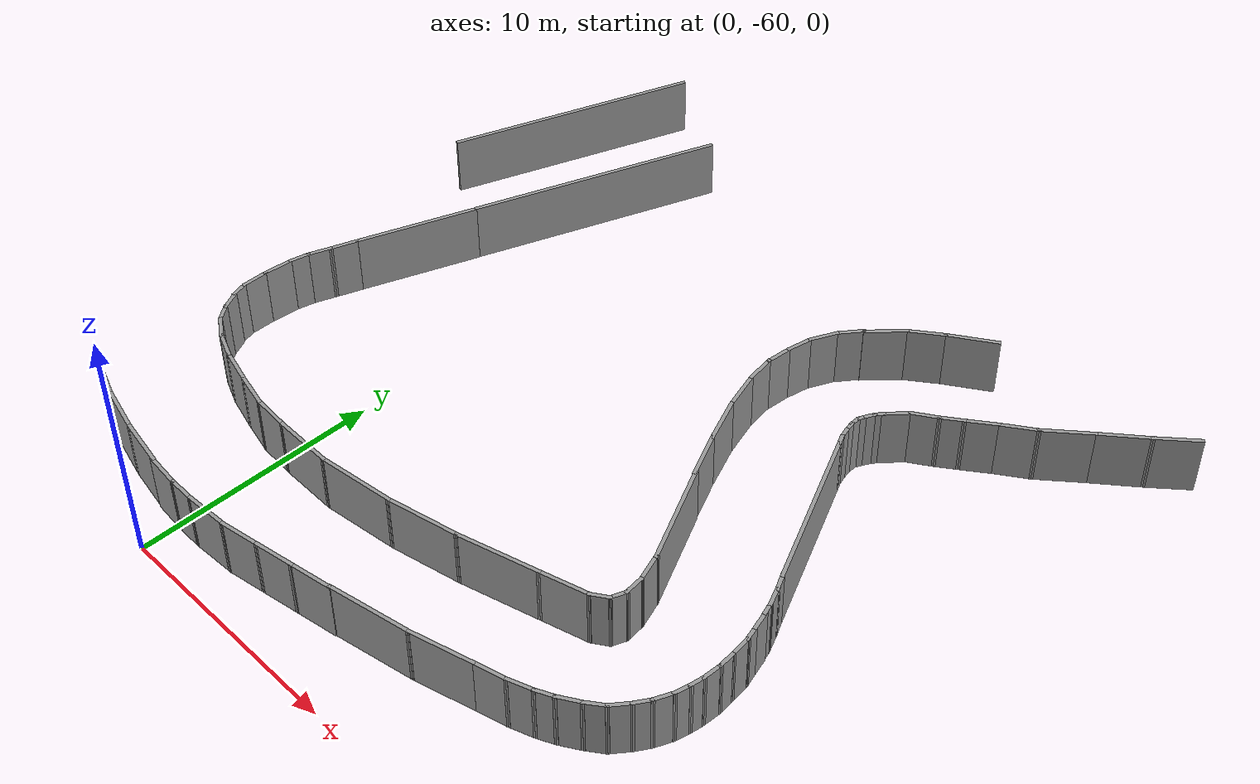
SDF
<sdf version="1.6">
 <model name="pista">
  <pose>-3.33646 -16.6519 0 0 -0 0</pose>
  <link name="Wall_100">
   <collision name="Wall_100_Collision">
    <geometry><box><size>0.780599 0.15 2.5</size></box></geometry>
    <pose>0 0 1.25 0 -0 0</pose>
   </collision>
   <visual name="Wall_100_Visual">
    <pose>0 0 1.25 0 -0 0</pose>
    <geometry><box><size>0.780599 0.15 2.5</size></box></geometry>
    <material>
     <script><uri>file://media/materials/scripts/gazebo.material</uri><name>Gazebo/Grey</name></script>
     <ambient>1 1 1 1</ambient>
    </material>
    <meta><layer>0</layer></meta>
   </visual>
   <pose>21.3853 -29.7001 0 0 0 -1.08828</pose>
  </link>
  <link name="Wall_101">
   <collision name="Wall_101_Collision">
    <geometry><box><size>0.852265 0.15 2.5</size></box></geometry>
    <pose>0 0 1.25 0 -0 0</pose>
   </collision>
   <visual name="Wall_101_Visual">
    <pose>0 0 1.25 0 -0 0</pose>
    <geometry><box><size>0.852265 0.15 2.5</size></box></geometry>
    <material>
     <script><uri>file://media/materials/scripts/gazebo.material</uri><name>Gazebo/Grey</name></script>
     <ambient>1 1 1 1</ambient>
    </material>
    <meta><layer>0</layer></meta>
   </visual>
   <pose>21.6779 -30.2986 0 0 0 -1.14103</pose>
  </link>
  <link name="Wall_102">
   <collision name="Wall_102_Collision">
    <geometry><box><size>0.570586 0.15 2.5</size></box></geometry>
    <pose>0 0 1.25 0 -0 0</pose>
   </collision>
   <visual name="Wall_102_Visual">
    <pose>0 0 1.25 0 -0 0</pose>
    <geometry><box><size>0.570586 0.15 2.5</size></box></geometry>
    <material>
     <script><uri>file://media/materials/scripts/gazebo.material</uri><name>Gazebo/Grey</name></script>
     <ambient>1 1 1 1</ambient>
    </material>
    <meta><layer>0</layer></meta>
   </visual>
   <pose>21.8907 -30.8173 0 0 0 -1.24905</pose>
  </link>
  <link name="Wall_104">
   <collision name="Wall_104_Collision">
    <geometry><box><size>0.815005 0.15 2.5</size></box></geometry>
    <pose>0 0 1.25 0 -0 0</pose>
   </collision>
   <visual name="Wall_104_Visual">
    <pose>0 0 1.25 0 -0 0</pose>
    <geometry><box><size>0.815005 0.15 2.5</size></box></geometry>
    <material>
     <script><uri>file://media/materials/scripts/gazebo.material</uri><name>Gazebo/Grey</name></script>
     <ambient>1 1 1 1</ambient>
    </material>
    <meta><layer>0</layer></meta>
   </visual>
   <pose>22.0769 -31.3626 0 0 0 -1.287</pose>
  </link>
  <link name="Wall_105">
   <collision name="Wall_105_Collision">
    <geometry><box><size>0.705428 0.15 2.5</size></box></geometry>
    <pose>0 0 1.25 0 -0 0</pose>
   </collision>
   <visual name="Wall_105_Visual">
    <pose>0 0 1.25 0 -0 0</pose>
    <geometry><box><size>0.705428 0.15 2.5</size></box></geometry>
    <material>
     <script><uri>file://media/materials/scripts/gazebo.material</uri><name>Gazebo/Grey</name></script>
     <ambient>1 1 1 1</ambient>
    </material>
    <meta><layer>0</layer></meta>
   </visual>
   <pose>22.2498 -31.9478 0 0 0 -1.27934</pose>
  </link>
  <link name="Wall_106">
   <collision name="Wall_106_Collision">
    <geometry><box><size>0.955068 0.15 2.5</size></box></geometry>
    <pose>0 0 1.25 0 -0 0</pose>
   </collision>
   <visual name="Wall_106_Visual">
    <pose>0 0 1.25 0 -0 0</pose>
    <geometry><box><size>0.955068 0.15 2.5</size></box></geometry>
    <material>
     <script><uri>file://media/materials/scripts/gazebo.material</uri><name>Gazebo/Grey</name></script>
     <ambient>1 1 1 1</ambient>
    </material>
    <meta><layer>0</layer></meta>
   </visual>
   <pose>22.3828 -32.6128 0 0 0 -1.43824</pose>
  </link>
  <link name="Wall_107">
   <collision name="Wall_107_Collision">
    <geometry><box><size>0.790618 0.15 2.5</size></box></geometry>
    <pose>0 0 1.25 0 -0 0</pose>
   </collision>
   <visual name="Wall_107_Visual">
    <pose>0 0 1.25 0 -0 0</pose>
    <geometry><box><size>0.790618 0.15 2.5</size></box></geometry>
    <material>
     <script><uri>file://media/materials/scripts/gazebo.material</uri><name>Gazebo/Grey</name></script>
     <ambient>1 1 1 1</ambient>
    </material>
    <meta><layer>0</layer></meta>
   </visual>
   <pose>22.4626 -33.331 0 0 0 -1.48765</pose>
  </link>
  <link name="Wall_108">
   <collision name="Wall_108_Collision">
    <geometry><box><size>0.868698 0.15 2.5</size></box></geometry>
    <pose>0 0 1.25 0 -0 0</pose>
   </collision>
   <visual name="Wall_108_Visual">
    <pose>0 0 1.25 0 -0 0</pose>
    <geometry><box><size>0.868698 0.15 2.5</size></box></geometry>
    <material>
     <script><uri>file://media/materials/scripts/gazebo.material</uri><name>Gazebo/Grey</name></script>
     <ambient>1 1 1 1</ambient>
    </material>
    <meta><layer>0</layer></meta>
   </visual>
   <pose>22.4759 -34.0093 0 0 0 -1.60782</pose>
  </link>
  <link name="Wall_109">
   <collision name="Wall_109_Collision">
    <geometry><box><size>0.687956 0.15 2.5</size></box></geometry>
    <pose>0 0 1.25 0 -0 0</pose>
   </collision>
   <visual name="Wall_109_Visual">
    <pose>0 0 1.25 0 -0 0</pose>
    <geometry><box><size>0.687956 0.15 2.5</size></box></geometry>
    <material>
     <script><uri>file://media/materials/scripts/gazebo.material</uri><name>Gazebo/Grey</name></script>
     <ambient>1 1 1 1</ambient>
    </material>
    <meta><layer>0</layer></meta>
   </visual>
   <pose>22.4227 -34.6344 0 0 0 -1.71969</pose>
  </link>
  <link name="Wall_110">
   <collision name="Wall_110_Collision">
    <geometry><box><size>0.750128 0.15 2.5</size></box></geometry>
    <pose>0 0 1.25 0 -0 0</pose>
   </collision>
   <visual name="Wall_110_Visual">
    <pose>0 0 1.25 0 -0 0</pose>
    <geometry><box><size>0.750128 0.15 2.5</size></box></geometry>
    <material>
     <script><uri>file://media/materials/scripts/gazebo.material</uri><name>Gazebo/Grey</name></script>
     <ambient>1 1 1 1</ambient>
    </material>
    <meta><layer>0</layer></meta>
   </visual>
   <pose>22.3163 -35.193 0 0 0 -1.79427</pose>
  </link>
  <link name="Wall_111">
   <collision name="Wall_111_Collision">
    <geometry><box><size>0.900955 0.15 2.5</size></box></geometry>
    <pose>0 0 1.25 0 -0 0</pose>
   </collision>
   <visual name="Wall_111_Visual">
    <pose>0 0 1.25 0 -0 0</pose>
    <geometry><box><size>0.900955 0.15 2.5</size></box></geometry>
    <material>
     <script><uri>file://media/materials/scripts/gazebo.material</uri><name>Gazebo/Grey</name></script>
     <ambient>1 1 1 1</ambient>
    </material>
    <meta><layer>0</layer></meta>
   </visual>
   <pose>22.1035 -35.8314 0 0 0 -1.97104</pose>
  </link>
  <link name="Wall_112">
   <collision name="Wall_112_Collision">
    <geometry><box><size>0.806976 0.15 2.5</size></box></geometry>
    <pose>0 0 1.25 0 -0 0</pose>
   </collision>
   <visual name="Wall_112_Visual">
    <pose>0 0 1.25 0 -0 0</pose>
    <geometry><box><size>0.806976 0.15 2.5</size></box></geometry>
    <material>
     <script><uri>file://media/materials/scripts/gazebo.material</uri><name>Gazebo/Grey</name></script>
     <ambient>1 1 1 1</ambient>
    </material>
    <meta><layer>0</layer></meta>
   </visual>
   <pose>21.7843 -36.4565 0 0 0 -2.1251</pose>
  </link>
  <link name="Wall_113">
   <collision name="Wall_113_Collision">
    <geometry><box><size>0.948006 0.15 2.5</size></box></geometry>
    <pose>0 0 1.25 0 -0 0</pose>
   </collision>
   <visual name="Wall_113_Visual">
    <pose>0 0 1.25 0 -0 0</pose>
    <geometry><box><size>0.948006 0.15 2.5</size></box></geometry>
    <material>
     <script><uri>file://media/materials/scripts/gazebo.material</uri><name>Gazebo/Grey</name></script>
     <ambient>1 1 1 1</ambient>
    </material>
    <meta><layer>0</layer></meta>
   </visual>
   <pose>21.372 -37.055 0 0 0 -2.2143</pose>
  </link>
  <link name="Wall_114">
   <collision name="Wall_114_Collision">
    <geometry><box><size>0.948006 0.15 2.5</size></box></geometry>
    <pose>0 0 1.25 0 -0 0</pose>
   </collision>
   <visual name="Wall_114_Visual">
    <pose>0 0 1.25 0 -0 0</pose>
    <geometry><box><size>0.948006 0.15 2.5</size></box></geometry>
    <material>
     <script><uri>file://media/materials/scripts/gazebo.material</uri><name>Gazebo/Grey</name></script>
     <ambient>1 1 1 1</ambient>
    </material>
    <meta><layer>0</layer></meta>
   </visual>
   <pose>20.8134 -37.6136 0 0 0 -2.49809</pose>
  </link>
  <link name="Wall_115">
   <collision name="Wall_115_Collision">
    <geometry><box><size>1.05792 0.15 2.5</size></box></geometry>
    <pose>0 0 1.25 0 -0 0</pose>
   </collision>
   <visual name="Wall_115_Visual">
    <pose>0 0 1.25 0 -0 0</pose>
    <geometry><box><size>1.05792 0.15 2.5</size></box></geometry>
    <material>
     <script><uri>file://media/materials/scripts/gazebo.material</uri><name>Gazebo/Grey</name></script>
     <ambient>1 1 1 1</ambient>
    </material>
    <meta><layer>0</layer></meta>
   </visual>
   <pose>20.1085 -38.0924 0 0 0 -2.5861</pose>
  </link>
  <link name="Wall_116">
   <collision name="Wall_116_Collision">
    <geometry><box><size>0.887646 0.15 2.5</size></box></geometry>
    <pose>0 0 1.25 0 -0 0</pose>
   </collision>
   <visual name="Wall_116_Visual">
    <pose>0 0 1.25 0 -0 0</pose>
    <geometry><box><size>0.887646 0.15 2.5</size></box></geometry>
    <material>
     <script><uri>file://media/materials/scripts/gazebo.material</uri><name>Gazebo/Grey</name></script>
     <ambient>1 1 1 1</ambient>
    </material>
    <meta><layer>0</layer></meta>
   </visual>
   <pose>19.3903 -38.4914 0 0 0 -2.69407</pose>
  </link>
  <link name="Wall_117">
   <collision name="Wall_117_Collision">
    <geometry><box><size>1.14315 0.15 2.5</size></box></geometry>
    <pose>0 0 1.25 0 -0 0</pose>
   </collision>
   <visual name="Wall_117_Visual">
    <pose>0 0 1.25 0 -0 0</pose>
    <geometry><box><size>1.14315 0.15 2.5</size></box></geometry>
    <material>
     <script><uri>file://media/materials/scripts/gazebo.material</uri><name>Gazebo/Grey</name></script>
     <ambient>1 1 1 1</ambient>
    </material>
    <meta><layer>0</layer></meta>
   </visual>
   <pose>18.5923 -38.8239 0 0 0 -2.78596</pose>
  </link>
  <link name="Wall_118">
   <collision name="Wall_118_Collision">
    <geometry><box><size>1.44715 0.15 2.5</size></box></geometry>
    <pose>0 0 1.25 0 -0 0</pose>
   </collision>
   <visual name="Wall_118_Visual">
    <pose>0 0 1.25 0 -0 0</pose>
    <geometry><box><size>1.44715 0.15 2.5</size></box></geometry>
    <material>
     <script><uri>file://media/materials/scripts/gazebo.material</uri><name>Gazebo/Grey</name></script>
     <ambient>1 1 1 1</ambient>
    </material>
    <meta><layer>0</layer></meta>
   </visual>
   <pose>17.5017 -39.1697 0 0 0 -2.87174</pose>
  </link>
  <link name="Wall_119">
   <collision name="Wall_119_Collision">
    <geometry><box><size>2.69307 0.15 2.5</size></box></geometry>
    <pose>0 0 1.25 0 -0 0</pose>
   </collision>
   <visual name="Wall_119_Visual">
    <pose>0 0 1.25 0 -0 0</pose>
    <geometry><box><size>2.69307 0.15 2.5</size></box></geometry>
    <material>
     <script><uri>file://media/materials/scripts/gazebo.material</uri><name>Gazebo/Grey</name></script>
     <ambient>1 1 1 1</ambient>
    </material>
    <meta><layer>0</layer></meta>
   </visual>
   <pose>15.653 -39.6885 0 0 0 -2.86617</pose>
  </link>
  <link name="Wall_120">
   <collision name="Wall_120_Collision">
    <geometry><box><size>3.52015 0.15 2.5</size></box></geometry>
    <pose>0 0 1.25 0 -0 0</pose>
   </collision>
   <visual name="Wall_120_Visual">
    <pose>0 0 1.25 0 -0 0</pose>
    <geometry><box><size>3.52015 0.15 2.5</size></box></geometry>
    <material>
     <script><uri>file://media/materials/scripts/gazebo.material</uri><name>Gazebo/Grey</name></script>
     <ambient>1 1 1 1</ambient>
    </material>
    <meta><layer>0</layer></meta>
   </visual>
   <pose>12.7802 -40.3801 0 0 0 -2.93491</pose>
  </link>
  <link name="Wall_131">
   <collision name="Wall_131_Collision">
    <geometry><box><size>1.58863 0.15 2.5</size></box></geometry>
    <pose>0 0 1.25 0 -0 0</pose>
   </collision>
   <visual name="Wall_131_Visual">
    <pose>0 0 1.25 0 -0 0</pose>
    <geometry><box><size>1.58863 0.15 2.5</size></box></geometry>
    <material>
     <script><uri>file://media/materials/scripts/gazebo.material</uri><name>Gazebo/Grey</name></script>
     <ambient>1 1 1 1</ambient>
    </material>
    <meta><layer>0</layer></meta>
   </visual>
   <pose>-2.31544 -40.6195 0 0 0 -0.339293</pose>
  </link>
  <link name="Wall_132">
   <collision name="Wall_132_Collision">
    <geometry><box><size>2.06614 0.15 2.5</size></box></geometry>
    <pose>0 0 1.25 0 -0 0</pose>
   </collision>
   <visual name="Wall_132_Visual">
    <pose>0 0 1.25 0 -0 0</pose>
    <geometry><box><size>2.06614 0.15 2.5</size></box></geometry>
    <material>
     <script><uri>file://media/materials/scripts/gazebo.material</uri><name>Gazebo/Grey</name></script>
     <ambient>1 1 1 1</ambient>
    </material>
    <meta><layer>0</layer></meta>
   </visual>
   <pose>-0.706128 -41.085 0 0 0 -0.238245</pose>
  </link>
  <link name="Wall_133">
   <collision name="Wall_133_Collision">
    <geometry><box><size>2.11788 0.15 2.5</size></box></geometry>
    <pose>0 0 1.25 0 -0 0</pose>
   </collision>
   <visual name="Wall_133_Visual">
    <pose>0 0 1.25 0 -0 0</pose>
    <geometry><box><size>2.11788 0.15 2.5</size></box></geometry>
    <material>
     <script><uri>file://media/materials/scripts/gazebo.material</uri><name>Gazebo/Grey</name></script>
     <ambient>1 1 1 1</ambient>
    </material>
    <meta><layer>0</layer></meta>
   </visual>
   <pose>1.19579 -41.4707 0 0 0 -0.162926</pose>
  </link>
  <link name="Wall_142">
   <collision name="Wall_142_Collision">
    <geometry><box><size>1.85594 0.15 2.5</size></box></geometry>
    <pose>0 0 1.25 0 -0 0</pose>
   </collision>
   <visual name="Wall_142_Visual">
    <pose>0 0 1.25 0 -0 0</pose>
    <geometry><box><size>1.85594 0.15 2.5</size></box></geometry>
    <material>
     <script><uri>file://media/materials/scripts/gazebo.material</uri><name>Gazebo/Grey</name></script>
     <ambient>1 1 1 1</ambient>
    </material>
    <meta><layer>0</layer></meta>
   </visual>
   <pose>10.2931 -40.9121 0 0 0 -2.95337</pose>
  </link>
  <link name="Wall_143">
   <collision name="Wall_143_Collision">
    <geometry><box><size>1.72031 0.15 2.5</size></box></geometry>
    <pose>0 0 1.25 0 -0 0</pose>
   </collision>
   <visual name="Wall_143_Visual">
    <pose>0 0 1.25 0 -0 0</pose>
    <geometry><box><size>1.72031 0.15 2.5</size></box></geometry>
    <material>
     <script><uri>file://media/materials/scripts/gazebo.material</uri><name>Gazebo/Grey</name></script>
     <ambient>1 1 1 1</ambient>
    </material>
    <meta><layer>0</layer></meta>
   </visual>
   <pose>8.68374 -41.218 0 0 0 -2.95416</pose>
  </link>
  <link name="Wall_144">
   <collision name="Wall_144_Collision">
    <geometry><box><size>1.74646 0.15 2.5</size></box></geometry>
    <pose>0 0 1.25 0 -0 0</pose>
   </collision>
   <visual name="Wall_144_Visual">
    <pose>0 0 1.25 0 -0 0</pose>
    <geometry><box><size>1.74646 0.15 2.5</size></box></geometry>
    <material>
     <script><uri>file://media/materials/scripts/gazebo.material</uri><name>Gazebo/Grey</name></script>
     <ambient>1 1 1 1</ambient>
    </material>
    <meta><layer>0</layer></meta>
   </visual>
   <pose>7.12763 -41.5106 0 0 0 -2.95727</pose>
  </link>
  <link name="Wall_145">
   <collision name="Wall_145_Collision">
    <geometry><box><size>1.90883 0.15 2.5</size></box></geometry>
    <pose>0 0 1.25 0 -0 0</pose>
   </collision>
   <visual name="Wall_145_Visual">
    <pose>0 0 1.25 0 -0 0</pose>
    <geometry><box><size>1.90883 0.15 2.5</size></box></geometry>
    <material>
     <script><uri>file://media/materials/scripts/gazebo.material</uri><name>Gazebo/Grey</name></script>
     <ambient>1 1 1 1</ambient>
    </material>
    <meta><layer>0</layer></meta>
   </visual>
   <pose>5.46512 -41.7101 0 0 0 -3.08106</pose>
  </link>
  <link name="Wall_146">
   <collision name="Wall_146_Collision">
    <geometry><box><size>1.18741 0.15 2.5</size></box></geometry>
    <pose>0 0 1.25 0 -0 0</pose>
   </collision>
   <visual name="Wall_146_Visual">
    <pose>0 0 1.25 0 -0 0</pose>
    <geometry><box><size>1.18741 0.15 2.5</size></box></geometry>
    <material>
     <script><uri>file://media/materials/scripts/gazebo.material</uri><name>Gazebo/Grey</name></script>
     <ambient>1 1 1 1</ambient>
    </material>
    <meta><layer>0</layer></meta>
   </visual>
   <pose>4.06861 -41.7633 0 0 -0 3.14159</pose>
  </link>
  <link name="Wall_147">
   <collision name="Wall_147_Collision">
    <geometry><box><size>1.5373 0.15 2.5</size></box></geometry>
    <pose>0 0 1.25 0 -0 0</pose>
   </collision>
   <visual name="Wall_147_Visual">
    <pose>0 0 1.25 0 -0 0</pose>
    <geometry><box><size>1.5373 0.15 2.5</size></box></geometry>
    <material>
     <script><uri>file://media/materials/scripts/gazebo.material</uri><name>Gazebo/Grey</name></script>
     <ambient>1 1 1 1</ambient>
    </material>
    <meta><layer>0</layer></meta>
   </visual>
   <pose>2.8583 -41.7101 0 0 -0 3.06482</pose>
  </link>
  <link name="Wall_156">
   <collision name="Wall_156_Collision">
    <geometry><box><size>10.3154 0.15 2.5</size></box></geometry>
    <pose>0 0 1.25 0 -0 0</pose>
   </collision>
   <visual name="Wall_156_Visual">
    <pose>0 0 1.25 0 -0 0</pose>
    <geometry><box><size>10.3154 0.15 2.5</size></box></geometry>
    <material>
     <script><uri>file://media/materials/scripts/gazebo.material</uri><name>Gazebo/Grey</name></script>
     <ambient>1 1 1 1</ambient>
    </material>
    <meta><layer>0</layer></meta>
   </visual>
   <pose>-2.39524 -17.4108 0 0 -0 1.22091</pose>
  </link>
  <link name="Wall_305">
   <collision name="Wall_305_Collision">
    <geometry><box><size>10.3929 0.15 2.5</size></box></geometry>
    <pose>0 0 1.25 0 -0 0</pose>
   </collision>
   <visual name="Wall_305_Visual">
    <pose>0 0 1.25 0 -0 0</pose>
    <geometry><box><size>10.3929 0.15 2.5</size></box></geometry>
    <material>
     <script><uri>file://media/materials/scripts/gazebo.material</uri><name>Gazebo/Grey</name></script>
     <ambient>1 1 1 1</ambient>
    </material>
    <meta><layer>0</layer></meta>
   </visual>
   <pose>1.39028 -19.6066 0 0 0 -1.92622</pose>
  </link>
  <link name="Wall_307">
   <collision name="Wall_307_Collision">
    <geometry><box><size>5.0317 0.15 2.5</size></box></geometry>
    <pose>0 0 1.25 0 -0 0</pose>
   </collision>
   <visual name="Wall_307_Visual">
    <pose>0 0 1.25 0 -0 0</pose>
    <geometry><box><size>5.0317 0.15 2.5</size></box></geometry>
    <material>
     <script><uri>file://media/materials/scripts/gazebo.material</uri><name>Gazebo/Grey</name></script>
     <ambient>1 1 1 1</ambient>
    </material>
    <meta><layer>0</layer></meta>
   </visual>
   <pose>-1.26598 -26.7931 0 0 0 -1.92702</pose>
  </link>
  <link name="Wall_308">
   <collision name="Wall_308_Collision">
    <geometry><box><size>1.25222 0.15 2.5</size></box></geometry>
    <pose>0 0 1.25 0 -0 0</pose>
   </collision>
   <visual name="Wall_308_Visual">
    <pose>0 0 1.25 0 -0 0</pose>
    <geometry><box><size>1.25222 0.15 2.5</size></box></geometry>
    <material>
     <script><uri>file://media/materials/scripts/gazebo.material</uri><name>Gazebo/Grey</name></script>
     <ambient>1 1 1 1</ambient>
    </material>
    <meta><layer>0</layer></meta>
   </visual>
   <pose>-2.30339 -29.5994 0 0 0 -1.91544</pose>
  </link>
  <link name="Wall_309">
   <collision name="Wall_309_Collision">
    <geometry><box><size>1.05909 0.15 2.5</size></box></geometry>
    <pose>0 0 1.25 0 -0 0</pose>
   </collision>
   <visual name="Wall_309_Visual">
    <pose>0 0 1.25 0 -0 0</pose>
    <geometry><box><size>1.05909 0.15 2.5</size></box></geometry>
    <material>
     <script><uri>file://media/materials/scripts/gazebo.material</uri><name>Gazebo/Grey</name></script>
     <ambient>1 1 1 1</ambient>
    </material>
    <meta><layer>0</layer></meta>
   </visual>
   <pose>-2.64919 -30.5437 0 0 0 -1.92957</pose>
  </link>
  <link name="Wall_310">
   <collision name="Wall_310_Collision">
    <geometry><box><size>0.885725 0.15 2.5</size></box></geometry>
    <pose>0 0 1.25 0 -0 0</pose>
   </collision>
   <visual name="Wall_310_Visual">
    <pose>0 0 1.25 0 -0 0</pose>
    <geometry><box><size>0.885725 0.15 2.5</size></box></geometry>
    <material>
     <script><uri>file://media/materials/scripts/gazebo.material</uri><name>Gazebo/Grey</name></script>
     <ambient>1 1 1 1</ambient>
    </material>
    <meta><layer>0</layer></meta>
   </visual>
   <pose>-2.8886 -31.3284 0 0 0 -1.78947</pose>
  </link>
  <link name="Wall_311">
   <collision name="Wall_311_Collision">
    <geometry><box><size>1.29875 0.15 2.5</size></box></geometry>
    <pose>0 0 1.25 0 -0 0</pose>
   </collision>
   <visual name="Wall_311_Visual">
    <pose>0 0 1.25 0 -0 0</pose>
    <geometry><box><size>1.29875 0.15 2.5</size></box></geometry>
    <material>
     <script><uri>file://media/materials/scripts/gazebo.material</uri><name>Gazebo/Grey</name></script>
     <ambient>1 1 1 1</ambient>
    </material>
    <meta><layer>0</layer></meta>
   </visual>
   <pose>-3.0216 -32.2594 0 0 0 -1.66355</pose>
  </link>
  <link name="Wall_312">
   <collision name="Wall_312_Collision">
    <geometry><box><size>1.13421 0.15 2.5</size></box></geometry>
    <pose>0 0 1.25 0 -0 0</pose>
   </collision>
   <visual name="Wall_312_Visual">
    <pose>0 0 1.25 0 -0 0</pose>
    <geometry><box><size>1.13421 0.15 2.5</size></box></geometry>
    <material>
     <script><uri>file://media/materials/scripts/gazebo.material</uri><name>Gazebo/Grey</name></script>
     <ambient>1 1 1 1</ambient>
    </material>
    <meta><layer>0</layer></meta>
   </visual>
   <pose>-3.0748 -33.3234 0 0 0 -1.5708</pose>
  </link>
  <link name="Wall_313">
   <collision name="Wall_313_Collision">
    <geometry><box><size>0.756578 0.15 2.5</size></box></geometry>
    <pose>0 0 1.25 0 -0 0</pose>
   </collision>
   <visual name="Wall_313_Visual">
    <pose>0 0 1.25 0 -0 0</pose>
    <geometry><box><size>0.756578 0.15 2.5</size></box></geometry>
    <material>
     <script><uri>file://media/materials/scripts/gazebo.material</uri><name>Gazebo/Grey</name></script>
     <ambient>1 1 1 1</ambient>
    </material>
    <meta><layer>0</layer></meta>
   </visual>
   <pose>-2.99499 -34.1081 0 0 0 -1.30454</pose>
  </link>
  <link name="Wall_315">
   <collision name="Wall_315_Collision">
    <geometry><box><size>0.828175 0.15 2.5</size></box></geometry>
    <pose>0 0 1.25 0 -0 0</pose>
   </collision>
   <visual name="Wall_315_Visual">
    <pose>0 0 1.25 0 -0 0</pose>
    <geometry><box><size>0.828175 0.15 2.5</size></box></geometry>
    <material>
     <script><uri>file://media/materials/scripts/gazebo.material</uri><name>Gazebo/Grey</name></script>
     <ambient>1 1 1 1</ambient>
    </material>
    <meta><layer>0</layer></meta>
   </visual>
   <pose>-2.71569 -34.7598 0 0 0 -1.12469</pose>
  </link>
  <link name="Wall_316">
   <collision name="Wall_316_Collision">
    <geometry><box><size>0.852265 0.15 2.5</size></box></geometry>
    <pose>0 0 1.25 0 -0 0</pose>
   </collision>
   <visual name="Wall_316_Visual">
    <pose>0 0 1.25 0 -0 0</pose>
    <geometry><box><size>0.852265 0.15 2.5</size></box></geometry>
    <material>
     <script><uri>file://media/materials/scripts/gazebo.material</uri><name>Gazebo/Grey</name></script>
     <ambient>1 1 1 1</ambient>
    </material>
    <meta><layer>0</layer></meta>
   </visual>
   <pose>-2.35659 -35.345 0 0 0 -0.91972</pose>
  </link>
  <link name="Wall_317">
   <collision name="Wall_317_Collision">
    <geometry><box><size>1.07222 0.15 2.5</size></box></geometry>
    <pose>0 0 1.25 0 -0 0</pose>
   </collision>
   <visual name="Wall_317_Visual">
    <pose>0 0 1.25 0 -0 0</pose>
    <geometry><box><size>1.07222 0.15 2.5</size></box></geometry>
    <material>
     <script><uri>file://media/materials/scripts/gazebo.material</uri><name>Gazebo/Grey</name></script>
     <ambient>1 1 1 1</ambient>
    </material>
    <meta><layer>0</layer></meta>
   </visual>
   <pose>-1.75809 -35.877 0 0 0 -0.580003</pose>
  </link>
  <link name="Wall_318">
   <collision name="Wall_318_Collision">
    <geometry><box><size>1.23671 0.15 2.5</size></box></geometry>
    <pose>0 0 1.25 0 -0 0</pose>
   </collision>
   <visual name="Wall_318_Visual">
    <pose>0 0 1.25 0 -0 0</pose>
    <geometry><box><size>1.23671 0.15 2.5</size></box></geometry>
    <material>
     <script><uri>file://media/materials/scripts/gazebo.material</uri><name>Gazebo/Grey</name></script>
     <ambient>1 1 1 1</ambient>
    </material>
    <meta><layer>0</layer></meta>
   </visual>
   <pose>-0.866979 -36.3292 0 0 0 -0.375961</pose>
  </link>
  <link name="Wall_319">
   <collision name="Wall_319_Collision">
    <geometry><box><size>1.65966 0.15 2.5</size></box></geometry>
    <pose>0 0 1.25 0 -0 0</pose>
   </collision>
   <visual name="Wall_319_Visual">
    <pose>0 0 1.25 0 -0 0</pose>
    <geometry><box><size>1.65966 0.15 2.5</size></box></geometry>
    <material>
     <script><uri>file://media/materials/scripts/gazebo.material</uri><name>Gazebo/Grey</name></script>
     <ambient>1 1 1 1</ambient>
    </material>
    <meta><layer>0</layer></meta>
   </visual>
   <pose>0.36993 -36.7149 0 0 0 -0.249252</pose>
  </link>
  <link name="Wall_320">
   <collision name="Wall_320_Collision">
    <geometry><box><size>1.51182 0.15 2.5</size></box></geometry>
    <pose>0 0 1.25 0 -0 0</pose>
   </collision>
   <visual name="Wall_320_Visual">
    <pose>0 0 1.25 0 -0 0</pose>
    <geometry><box><size>1.51182 0.15 2.5</size></box></geometry>
    <material>
     <script><uri>file://media/materials/scripts/gazebo.material</uri><name>Gazebo/Grey</name></script>
     <ambient>1 1 1 1</ambient>
    </material>
    <meta><layer>0</layer></meta>
   </visual>
   <pose>1.76644 -37.0474 0 0 0 -0.21655</pose>
  </link>
  <link name="Wall_321">
   <collision name="Wall_321_Collision">
    <geometry><box><size>1.64175 0.15 2.5</size></box></geometry>
    <pose>0 0 1.25 0 -0 0</pose>
   </collision>
   <visual name="Wall_321_Visual">
    <pose>0 0 1.25 0 -0 0</pose>
    <geometry><box><size>1.64175 0.15 2.5</size></box></geometry>
    <material>
     <script><uri>file://media/materials/scripts/gazebo.material</uri><name>Gazebo/Grey</name></script>
     <ambient>1 1 1 1</ambient>
    </material>
    <meta><layer>0</layer></meta>
   </visual>
   <pose>3.17625 -37.2336 0 0 0 -0.05352</pose>
  </link>
  <link name="Wall_322">
   <collision name="Wall_322_Collision">
    <geometry><box><size>2.54402 0.15 2.5</size></box></geometry>
    <pose>0 0 1.25 0 -0 0</pose>
   </collision>
   <visual name="Wall_322_Visual">
    <pose>0 0 1.25 0 -0 0</pose>
    <geometry><box><size>2.54402 0.15 2.5</size></box></geometry>
    <material>
     <script><uri>file://media/materials/scripts/gazebo.material</uri><name>Gazebo/Grey</name></script>
     <ambient>1 1 1 1</ambient>
    </material>
    <meta><layer>0</layer></meta>
   </visual>
   <pose>5.11806 -37.2735 0 0 -0 0</pose>
  </link>
  <link name="Wall_323">
   <collision name="Wall_323_Collision">
    <geometry><box><size>3.26858 0.15 2.5</size></box></geometry>
    <pose>0 0 1.25 0 -0 0</pose>
   </collision>
   <visual name="Wall_323_Visual">
    <pose>0 0 1.25 0 -0 0</pose>
    <geometry><box><size>3.26858 0.15 2.5</size></box></geometry>
    <material>
     <script><uri>file://media/materials/scripts/gazebo.material</uri><name>Gazebo/Grey</name></script>
     <ambient>1 1 1 1</ambient>
    </material>
    <meta><layer>0</layer></meta>
   </visual>
   <pose>7.85789 -37.0474 0 0 -0 0.145516</pose>
  </link>
  <link name="Wall_324">
   <collision name="Wall_324_Collision">
    <geometry><box><size>3.09878 0.15 2.5</size></box></geometry>
    <pose>0 0 1.25 0 -0 0</pose>
   </collision>
   <visual name="Wall_324_Visual">
    <pose>0 0 1.25 0 -0 0</pose>
    <geometry><box><size>3.09878 0.15 2.5</size></box></geometry>
    <material>
     <script><uri>file://media/materials/scripts/gazebo.material</uri><name>Gazebo/Grey</name></script>
     <ambient>1 1 1 1</ambient>
    </material>
    <meta><layer>0</layer></meta>
   </visual>
   <pose>10.8371 -36.4888 0 0 -0 0.227475</pose>
  </link>
  <link name="Wall_325">
   <collision name="Wall_325_Collision">
    <geometry><box><size>3.47503 0.15 2.5</size></box></geometry>
    <pose>0 0 1.25 0 -0 0</pose>
   </collision>
   <visual name="Wall_325_Visual">
    <pose>0 0 1.25 0 -0 0</pose>
    <geometry><box><size>3.47503 0.15 2.5</size></box></geometry>
    <material>
     <script><uri>file://media/materials/scripts/gazebo.material</uri><name>Gazebo/Grey</name></script>
     <ambient>1 1 1 1</ambient>
    </material>
    <meta><layer>0</layer></meta>
   </visual>
   <pose>13.8695 -35.6908 0 0 -0 0.283794</pose>
  </link>
  <link name="Wall_326">
   <collision name="Wall_326_Collision">
    <geometry><box><size>2.11949 0.15 2.5</size></box></geometry>
    <pose>0 0 1.25 0 -0 0</pose>
   </collision>
   <visual name="Wall_326_Visual">
    <pose>0 0 1.25 0 -0 0</pose>
    <geometry><box><size>2.11949 0.15 2.5</size></box></geometry>
    <material>
     <script><uri>file://media/materials/scripts/gazebo.material</uri><name>Gazebo/Grey</name></script>
     <ambient>1 1 1 1</ambient>
    </material>
    <meta><layer>0</layer></meta>
   </visual>
   <pose>16.4098 -34.946 0 0 -0 0.287576</pose>
  </link>
  <link name="Wall_327">
   <collision name="Wall_327_Collision">
    <geometry><box><size>0.858285 0.15 2.5</size></box></geometry>
    <pose>0 0 1.25 0 -0 0</pose>
   </collision>
   <visual name="Wall_327_Visual">
    <pose>0 0 1.25 0 -0 0</pose>
    <geometry><box><size>0.858285 0.15 2.5</size></box></geometry>
    <material>
     <script><uri>file://media/materials/scripts/gazebo.material</uri><name>Gazebo/Grey</name></script>
     <ambient>1 1 1 1</ambient>
    </material>
    <meta><layer>0</layer></meta>
   </visual>
   <pose>17.6468 -34.4672 0 0 -0 0.598419</pose>
  </link>
  <link name="Wall_328">
   <collision name="Wall_328_Collision">
    <geometry><box><size>0.747765 0.15 2.5</size></box></geometry>
    <pose>0 0 1.25 0 -0 0</pose>
   </collision>
   <visual name="Wall_328_Visual">
    <pose>0 0 1.25 0 -0 0</pose>
    <geometry><box><size>0.747765 0.15 2.5</size></box></geometry>
    <material>
     <script><uri>file://media/materials/scripts/gazebo.material</uri><name>Gazebo/Grey</name></script>
     <ambient>1 1 1 1</ambient>
    </material>
    <meta><layer>0</layer></meta>
   </visual>
   <pose>18.0458 -33.9884 0 0 -0 1.20682</pose>
  </link>
  <link name="Wall_329">
   <collision name="Wall_329_Collision">
    <geometry><box><size>0.899068 0.15 2.5</size></box></geometry>
    <pose>0 0 1.25 0 -0 0</pose>
   </collision>
   <visual name="Wall_329_Visual">
    <pose>0 0 1.25 0 -0 0</pose>
    <geometry><box><size>0.899068 0.15 2.5</size></box></geometry>
    <material>
     <script><uri>file://media/materials/scripts/gazebo.material</uri><name>Gazebo/Grey</name></script>
     <ambient>1 1 1 1</ambient>
    </material>
    <meta><layer>0</layer></meta>
   </visual>
   <pose>18.1123 -33.3367 0 0 -0 1.67753</pose>
  </link>
  <link name="Wall_330">
   <collision name="Wall_330_Collision">
    <geometry><box><size>1.2773 0.15 2.5</size></box></geometry>
    <pose>0 0 1.25 0 -0 0</pose>
   </collision>
   <visual name="Wall_330_Visual">
    <pose>0 0 1.25 0 -0 0</pose>
    <geometry><box><size>1.2773 0.15 2.5</size></box></geometry>
    <material>
     <script><uri>file://media/materials/scripts/gazebo.material</uri><name>Gazebo/Grey</name></script>
     <ambient>1 1 1 1</ambient>
    </material>
    <meta><layer>0</layer></meta>
   </visual>
   <pose>17.8862 -32.4323 0 0 -0 1.90747</pose>
  </link>
  <link name="Wall_331">
   <collision name="Wall_331_Collision">
    <geometry><box><size>4.31359 0.15 2.5</size></box></geometry>
    <pose>0 0 1.25 0 -0 0</pose>
   </collision>
   <visual name="Wall_331_Visual">
    <pose>0 0 1.25 0 -0 0</pose>
    <geometry><box><size>4.31359 0.15 2.5</size></box></geometry>
    <material>
     <script><uri>file://media/materials/scripts/gazebo.material</uri><name>Gazebo/Grey</name></script>
     <ambient>1 1 1 1</ambient>
    </material>
    <meta><layer>0</layer></meta>
   </visual>
   <pose>16.769 -30.0383 0 0 -0 2.03444</pose>
  </link>
  <link name="Wall_333">
   <collision name="Wall_333_Collision">
    <geometry><box><size>2.00611 0.15 2.5</size></box></geometry>
    <pose>0 0 1.25 0 -0 0</pose>
   </collision>
   <visual name="Wall_333_Visual">
    <pose>0 0 1.25 0 -0 0</pose>
    <geometry><box><size>2.00611 0.15 2.5</size></box></geometry>
    <material>
     <script><uri>file://media/materials/scripts/gazebo.material</uri><name>Gazebo/Grey</name></script>
     <ambient>1 1 1 1</ambient>
    </material>
    <meta><layer>0</layer></meta>
   </visual>
   <pose>15.4389 -27.3916 0 0 -0 2.01522</pose>
  </link>
  <link name="Wall_334">
   <collision name="Wall_334_Collision">
    <geometry><box><size>1.99771 0.15 2.5</size></box></geometry>
    <pose>0 0 1.25 0 -0 0</pose>
   </collision>
   <visual name="Wall_334_Visual">
    <pose>0 0 1.25 0 -0 0</pose>
    <geometry><box><size>1.99771 0.15 2.5</size></box></geometry>
    <material>
     <script><uri>file://media/materials/scripts/gazebo.material</uri><name>Gazebo/Grey</name></script>
     <ambient>1 1 1 1</ambient>
    </material>
    <meta><layer>0</layer></meta>
   </visual>
   <pose>14.6808 -25.7025 0 0 -0 1.97002</pose>
  </link>
  <link name="Wall_335">
   <collision name="Wall_335_Collision">
    <geometry><box><size>1.70674 0.15 2.5</size></box></geometry>
    <pose>0 0 1.25 0 -0 0</pose>
   </collision>
   <visual name="Wall_335_Visual">
    <pose>0 0 1.25 0 -0 0</pose>
    <geometry><box><size>1.70674 0.15 2.5</size></box></geometry>
    <material>
     <script><uri>file://media/materials/scripts/gazebo.material</uri><name>Gazebo/Grey</name></script>
     <ambient>1 1 1 1</ambient>
    </material>
    <meta><layer>0</layer></meta>
   </visual>
   <pose>14.0956 -24.1064 0 0 -0 1.86553</pose>
  </link>
  <link name="Wall_336">
   <collision name="Wall_336_Collision">
    <geometry><box><size>1.25222 0.15 2.5</size></box></geometry>
    <pose>0 0 1.25 0 -0 0</pose>
   </collision>
   <visual name="Wall_336_Visual">
    <pose>0 0 1.25 0 -0 0</pose>
    <geometry><box><size>1.25222 0.15 2.5</size></box></geometry>
    <material>
     <script><uri>file://media/materials/scripts/gazebo.material</uri><name>Gazebo/Grey</name></script>
     <ambient>1 1 1 1</ambient>
    </material>
    <meta><layer>0</layer></meta>
   </visual>
   <pose>13.7897 -22.8163 0 0 -0 1.71611</pose>
  </link>
  <link name="Wall_337">
   <collision name="Wall_337_Collision">
    <geometry><box><size>1.13744 0.15 2.5</size></box></geometry>
    <pose>0 0 1.25 0 -0 0</pose>
   </collision>
   <visual name="Wall_337_Visual">
    <pose>0 0 1.25 0 -0 0</pose>
    <geometry><box><size>1.13744 0.15 2.5</size></box></geometry>
    <material>
     <script><uri>file://media/materials/scripts/gazebo.material</uri><name>Gazebo/Grey</name></script>
     <ambient>1 1 1 1</ambient>
    </material>
    <meta><layer>0</layer></meta>
   </visual>
   <pose>13.7498 -21.7789 0 0 -0 1.48989</pose>
  </link>
  <link name="Wall_338">
   <collision name="Wall_338_Collision">
    <geometry><box><size>1.12554 0.15 2.5</size></box></geometry>
    <pose>0 0 1.25 0 -0 0</pose>
   </collision>
   <visual name="Wall_338_Visual">
    <pose>0 0 1.25 0 -0 0</pose>
    <geometry><box><size>1.12554 0.15 2.5</size></box></geometry>
    <material>
     <script><uri>file://media/materials/scripts/gazebo.material</uri><name>Gazebo/Grey</name></script>
     <ambient>1 1 1 1</ambient>
    </material>
    <meta><layer>0</layer></meta>
   </visual>
   <pose>13.8828 -20.808 0 0 -0 1.37875</pose>
  </link>
  <link name="Wall_339">
   <collision name="Wall_339_Collision">
    <geometry><box><size>1.23312 0.15 2.5</size></box></geometry>
    <pose>0 0 1.25 0 -0 0</pose>
   </collision>
   <visual name="Wall_339_Visual">
    <pose>0 0 1.25 0 -0 0</pose>
    <geometry><box><size>1.23312 0.15 2.5</size></box></geometry>
    <material>
     <script><uri>file://media/materials/scripts/gazebo.material</uri><name>Gazebo/Grey</name></script>
     <ambient>1 1 1 1</ambient>
    </material>
    <meta><layer>0</layer></meta>
   </visual>
   <pose>14.202 -19.8371 0 0 -0 1.1401</pose>
  </link>
  <link name="Wall_340">
   <collision name="Wall_340_Collision">
    <geometry><box><size>1.17678 0.15 2.5</size></box></geometry>
    <pose>0 0 1.25 0 -0 0</pose>
   </collision>
   <visual name="Wall_340_Visual">
    <pose>0 0 1.25 0 -0 0</pose>
    <geometry><box><size>1.17678 0.15 2.5</size></box></geometry>
    <material>
     <script><uri>file://media/materials/scripts/gazebo.material</uri><name>Gazebo/Grey</name></script>
     <ambient>1 1 1 1</ambient>
    </material>
    <meta><layer>0</layer></meta>
   </visual>
   <pose>14.734 -18.9327 0 0 -0 0.932477</pose>
  </link>
  <link name="Wall_342">
   <collision name="Wall_342_Collision">
    <geometry><box><size>1.73176 0.15 2.5</size></box></geometry>
    <pose>0 0 1.25 0 -0 0</pose>
   </collision>
   <visual name="Wall_342_Visual">
    <pose>0 0 1.25 0 -0 0</pose>
    <geometry><box><size>1.73176 0.15 2.5</size></box></geometry>
    <material>
     <script><uri>file://media/materials/scripts/gazebo.material</uri><name>Gazebo/Grey</name></script>
     <ambient>1 1 1 1</ambient>
    </material>
    <meta><layer>0</layer></meta>
   </visual>
   <pose>15.6251 -17.9352 0 0 -0 0.832981</pose>
  </link>
  <link name="Wall_343">
   <collision name="Wall_343_Collision">
    <geometry><box><size>1.59182 0.15 2.5</size></box></geometry>
    <pose>0 0 1.25 0 -0 0</pose>
   </collision>
   <visual name="Wall_343_Visual">
    <pose>0 0 1.25 0 -0 0</pose>
    <geometry><box><size>1.59182 0.15 2.5</size></box></geometry>
    <material>
     <script><uri>file://media/materials/scripts/gazebo.material</uri><name>Gazebo/Grey</name></script>
     <ambient>1 1 1 1</ambient>
    </material>
    <meta><layer>0</layer></meta>
   </visual>
   <pose>16.7291 -16.9111 0 0 -0 0.654571</pose>
  </link>
  <link name="Wall_344">
   <collision name="Wall_344_Collision">
    <geometry><box><size>2.142 0.15 2.5</size></box></geometry>
    <pose>0 0 1.25 0 -0 0</pose>
   </collision>
   <visual name="Wall_344_Visual">
    <pose>0 0 1.25 0 -0 0</pose>
    <geometry><box><size>2.142 0.15 2.5</size></box></geometry>
    <material>
     <script><uri>file://media/materials/scripts/gazebo.material</uri><name>Gazebo/Grey</name></script>
     <ambient>1 1 1 1</ambient>
    </material>
    <meta><layer>0</layer></meta>
   </visual>
   <pose>18.1256 -15.9136 0 0 -0 0.59541</pose>
  </link>
  <link name="Wall_82">
   <collision name="Wall_82_Collision">
    <geometry><box><size>1.90178 0.15 2.5</size></box></geometry>
    <pose>0 0 1.25 0 -0 0</pose>
   </collision>
   <visual name="Wall_82_Visual">
    <pose>0 0 1.25 0 -0 0</pose>
    <geometry><box><size>1.90178 0.15 2.5</size></box></geometry>
    <material>
     <script><uri>file://media/materials/scripts/gazebo.material</uri><name>Gazebo/Grey</name></script>
     <ambient>1 1 1 1</ambient>
    </material>
    <meta><layer>0</layer></meta>
   </visual>
   <pose>26.5709 -14.6211 0 0 0 -2.40991</pose>
  </link>
  <link name="Wall_83">
   <collision name="Wall_83_Collision">
    <geometry><box><size>2.16969 0.15 2.5</size></box></geometry>
    <pose>0 0 1.25 0 -0 0</pose>
   </collision>
   <visual name="Wall_83_Visual">
    <pose>0 0 1.25 0 -0 0</pose>
    <geometry><box><size>2.16969 0.15 2.5</size></box></geometry>
    <material>
     <script><uri>file://media/materials/scripts/gazebo.material</uri><name>Gazebo/Grey</name></script>
     <ambient>1 1 1 1</ambient>
    </material>
    <meta><layer>0</layer></meta>
   </visual>
   <pose>25.1478 -15.858 0 0 0 -2.44011</pose>
  </link>
  <link name="Wall_84">
   <collision name="Wall_84_Collision">
    <geometry><box><size>2.16689 0.15 2.5</size></box></geometry>
    <pose>0 0 1.25 0 -0 0</pose>
   </collision>
   <visual name="Wall_84_Visual">
    <pose>0 0 1.25 0 -0 0</pose>
    <geometry><box><size>2.16689 0.15 2.5</size></box></geometry>
    <material>
     <script><uri>file://media/materials/scripts/gazebo.material</uri><name>Gazebo/Grey</name></script>
     <ambient>1 1 1 1</ambient>
    </material>
    <meta><layer>0</layer></meta>
   </visual>
   <pose>23.6183 -17.1747 0 0 0 -2.42152</pose>
  </link>
  <link name="Wall_85">
   <collision name="Wall_85_Collision">
    <geometry><box><size>1.58172 0.15 2.5</size></box></geometry>
    <pose>0 0 1.25 0 -0 0</pose>
   </collision>
   <visual name="Wall_85_Visual">
    <pose>0 0 1.25 0 -0 0</pose>
    <geometry><box><size>1.58172 0.15 2.5</size></box></geometry>
    <material>
     <script><uri>file://media/materials/scripts/gazebo.material</uri><name>Gazebo/Grey</name></script>
     <ambient>1 1 1 1</ambient>
    </material>
    <meta><layer>0</layer></meta>
   </visual>
   <pose>22.275 -18.2521 0 0 0 -2.52782</pose>
  </link>
  <link name="Wall_86">
   <collision name="Wall_86_Collision">
    <geometry><box><size>1.38426 0.15 2.5</size></box></geometry>
    <pose>0 0 1.25 0 -0 0</pose>
   </collision>
   <visual name="Wall_86_Visual">
    <pose>0 0 1.25 0 -0 0</pose>
    <geometry><box><size>1.38426 0.15 2.5</size></box></geometry>
    <material>
     <script><uri>file://media/materials/scripts/gazebo.material</uri><name>Gazebo/Grey</name></script>
     <ambient>1 1 1 1</ambient>
    </material>
    <meta><layer>0</layer></meta>
   </visual>
   <pose>21.1976 -19.0368 0 0 0 -2.49378</pose>
  </link>
  <link name="Wall_87">
   <collision name="Wall_87_Collision">
    <geometry><box><size>1.04378 0.15 2.5</size></box></geometry>
    <pose>0 0 1.25 0 -0 0</pose>
   </collision>
   <visual name="Wall_87_Visual">
    <pose>0 0 1.25 0 -0 0</pose>
    <geometry><box><size>1.04378 0.15 2.5</size></box></geometry>
    <material>
     <script><uri>file://media/materials/scripts/gazebo.material</uri><name>Gazebo/Grey</name></script>
     <ambient>1 1 1 1</ambient>
    </material>
    <meta><layer>0</layer></meta>
   </visual>
   <pose>20.3464 -19.6752 0 0 0 -2.50404</pose>
  </link>
  <link name="Wall_88">
   <collision name="Wall_88_Collision">
    <geometry><box><size>1.20499 0.15 2.5</size></box></geometry>
    <pose>0 0 1.25 0 -0 0</pose>
   </collision>
   <visual name="Wall_88_Visual">
    <pose>0 0 1.25 0 -0 0</pose>
    <geometry><box><size>1.20499 0.15 2.5</size></box></geometry>
    <material>
     <script><uri>file://media/materials/scripts/gazebo.material</uri><name>Gazebo/Grey</name></script>
     <ambient>1 1 1 1</ambient>
    </material>
    <meta><layer>0</layer></meta>
   </visual>
   <pose>19.5484 -20.2338 0 0 0 -2.55359</pose>
  </link>
  <link name="Wall_89">
   <collision name="Wall_89_Collision">
    <geometry><box><size>1.13097 0.15 2.5</size></box></geometry>
    <pose>0 0 1.25 0 -0 0</pose>
   </collision>
   <visual name="Wall_89_Visual">
    <pose>0 0 1.25 0 -0 0</pose>
    <geometry><box><size>1.13097 0.15 2.5</size></box></geometry>
    <material>
     <script><uri>file://media/materials/scripts/gazebo.material</uri><name>Gazebo/Grey</name></script>
     <ambient>1 1 1 1</ambient>
    </material>
    <meta><layer>0</layer></meta>
   </visual>
   <pose>18.7903 -20.8988 0 0 0 -2.27942</pose>
  </link>
  <link name="Wall_92">
   <collision name="Wall_92_Collision">
    <geometry><box><size>0.474697 0.15 2.5</size></box></geometry>
    <pose>0 0 1.25 0 -0 0</pose>
   </collision>
   <visual name="Wall_92_Visual">
    <pose>0 0 1.25 0 -0 0</pose>
    <geometry><box><size>0.474697 0.15 2.5</size></box></geometry>
    <material>
     <script><uri>file://media/materials/scripts/gazebo.material</uri><name>Gazebo/Grey</name></script>
     <ambient>1 1 1 1</ambient>
    </material>
    <meta><layer>0</layer></meta>
   </visual>
   <pose>18.3795 -21.3875 0 0 0 -2.18152</pose>
  </link>
  <link name="Wall_93">
   <collision name="Wall_93_Collision">
    <geometry><box><size>0.506879 0.15 2.5</size></box></geometry>
    <pose>0 0 1.25 0 -0 0</pose>
   </collision>
   <visual name="Wall_93_Visual">
    <pose>0 0 1.25 0 -0 0</pose>
    <geometry><box><size>0.506879 0.15 2.5</size></box></geometry>
    <material>
     <script><uri>file://media/materials/scripts/gazebo.material</uri><name>Gazebo/Grey</name></script>
     <ambient>1 1 1 1</ambient>
    </material>
    <meta><layer>0</layer></meta>
   </visual>
   <pose>18.2066 -21.6801 0 0 0 -2.03444</pose>
  </link>
  <link name="Wall_94">
   <collision name="Wall_94_Collision">
    <geometry><box><size>0.411982 0.15 2.5</size></box></geometry>
    <pose>0 0 1.25 0 -0 0</pose>
   </collision>
   <visual name="Wall_94_Visual">
    <pose>0 0 1.25 0 -0 0</pose>
    <geometry><box><size>0.411982 0.15 2.5</size></box></geometry>
    <material>
     <script><uri>file://media/materials/scripts/gazebo.material</uri><name>Gazebo/Grey</name></script>
     <ambient>1 1 1 1</ambient>
    </material>
    <meta><layer>0</layer></meta>
   </visual>
   <pose>18.0736 -21.9594 0 0 0 -1.98902</pose>
  </link>
  <link name="Wall_95">
   <collision name="Wall_95_Collision">
    <geometry><box><size>0.523352 0.15 2.5</size></box></geometry>
    <pose>0 0 1.25 0 -0 0</pose>
   </collision>
   <visual name="Wall_95_Visual">
    <pose>0 0 1.25 0 -0 0</pose>
    <geometry><box><size>0.523352 0.15 2.5</size></box></geometry>
    <material>
     <script><uri>file://media/materials/scripts/gazebo.material</uri><name>Gazebo/Grey</name></script>
     <ambient>1 1 1 1</ambient>
    </material>
    <meta><layer>0</layer></meta>
   </visual>
   <pose>18.0204 -22.2653 0 0 0 -1.5708</pose>
  </link>
  <link name="Wall_96">
   <collision name="Wall_96_Collision">
    <geometry><box><size>0.504891 0.15 2.5</size></box></geometry>
    <pose>0 0 1.25 0 -0 0</pose>
   </collision>
   <visual name="Wall_96_Visual">
    <pose>0 0 1.25 0 -0 0</pose>
    <geometry><box><size>0.504891 0.15 2.5</size></box></geometry>
    <material>
     <script><uri>file://media/materials/scripts/gazebo.material</uri><name>Gazebo/Grey</name></script>
     <ambient>1 1 1 1</ambient>
    </material>
    <meta><layer>0</layer></meta>
   </visual>
   <pose>18.0603 -22.6244 0 0 0 -1.344</pose>
  </link>
  <link name="Wall_97">
   <collision name="Wall_97_Collision">
    <geometry><box><size>0.537305 0.15 2.5</size></box></geometry>
    <pose>0 0 1.25 0 -0 0</pose>
   </collision>
   <visual name="Wall_97_Visual">
    <pose>0 0 1.25 0 -0 0</pose>
    <geometry><box><size>0.537305 0.15 2.5</size></box></geometry>
    <material>
     <script><uri>file://media/materials/scripts/gazebo.material</uri><name>Gazebo/Grey</name></script>
     <ambient>1 1 1 1</ambient>
    </material>
    <meta><layer>0</layer></meta>
   </visual>
   <pose>18.1534 -22.9835 0 0 0 -1.2925</pose>
  </link>
  <link name="Wall_98">
   <collision name="Wall_98_Collision">
    <geometry><box><size>0.506879 0.15 2.5</size></box></geometry>
    <pose>0 0 1.25 0 -0 0</pose>
   </collision>
   <visual name="Wall_98_Visual">
    <pose>0 0 1.25 0 -0 0</pose>
    <geometry><box><size>0.506879 0.15 2.5</size></box></geometry>
    <material>
     <script><uri>file://media/materials/scripts/gazebo.material</uri><name>Gazebo/Grey</name></script>
     <ambient>1 1 1 1</ambient>
    </material>
    <meta><layer>0</layer></meta>
   </visual>
   <pose>18.2864 -23.3293 0 0 0 -1.10715</pose>
  </link>
  <link name="Wall_99">
   <collision name="Wall_99_Collision">
    <geometry><box><size>6.74089 0.15 2.5</size></box></geometry>
    <pose>0 0 1.25 0 -0 0</pose>
   </collision>
   <visual name="Wall_99_Visual">
    <pose>0 0 1.25 0 -0 0</pose>
    <geometry><box><size>6.74089 0.15 2.5</size></box></geometry>
    <material>
     <script><uri>file://media/materials/scripts/gazebo.material</uri><name>Gazebo/Grey</name></script>
     <ambient>1 1 1 1</ambient>
    </material>
    <meta><layer>0</layer></meta>
   </visual>
   <pose>19.8026 -26.4549 0 0 0 -1.11978</pose>
  </link>
  <static>1</static>
 </model>
</sdf>
